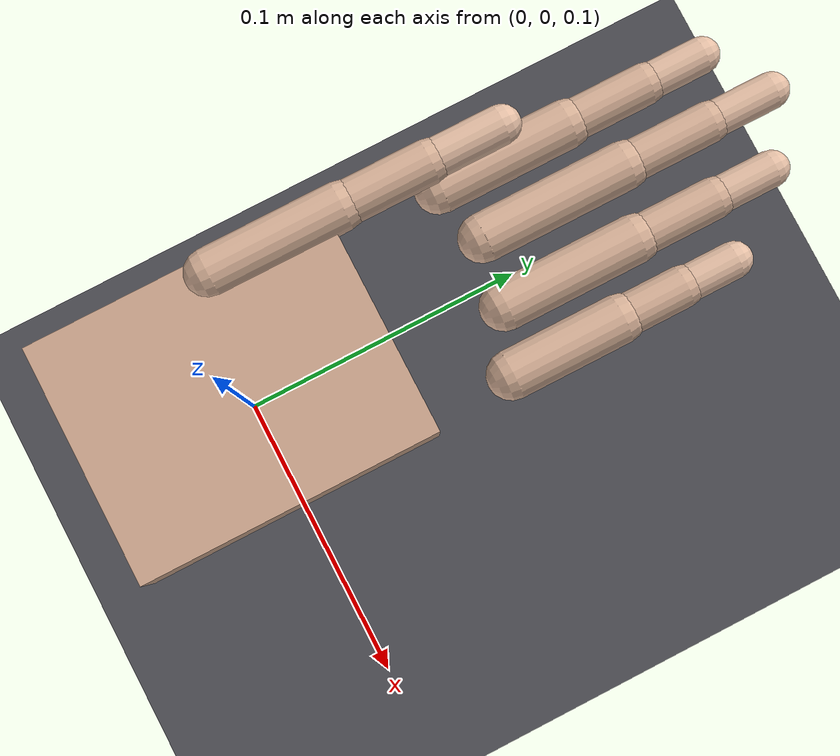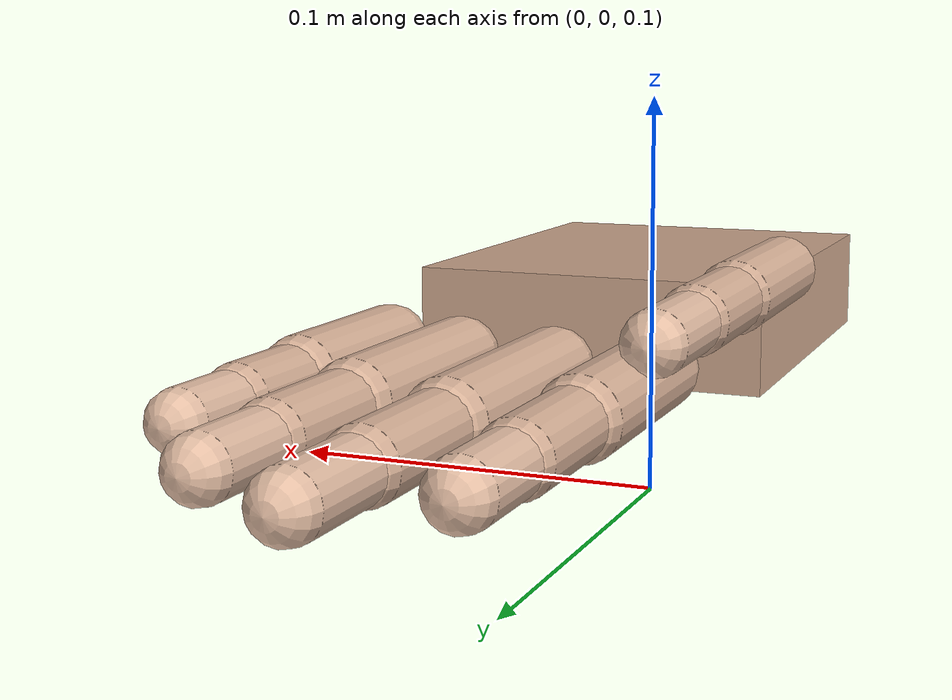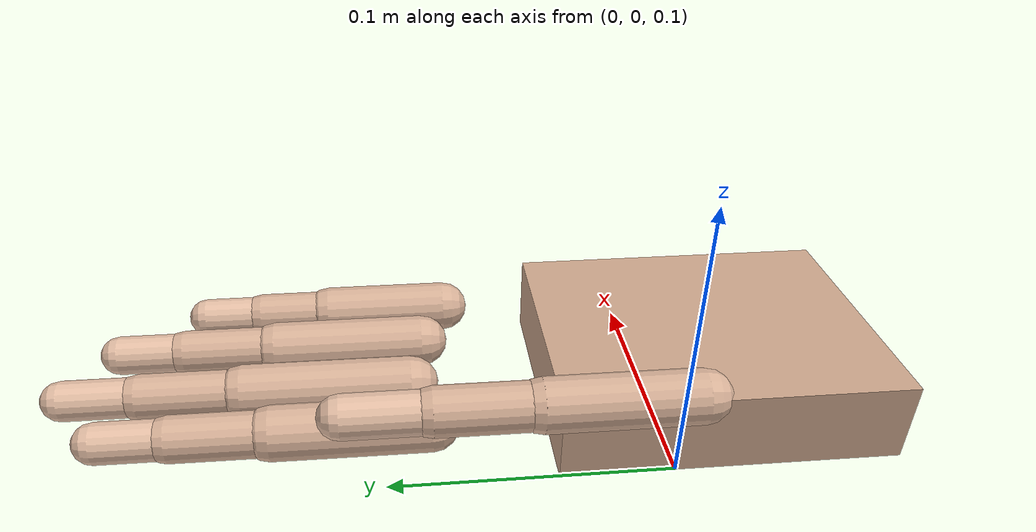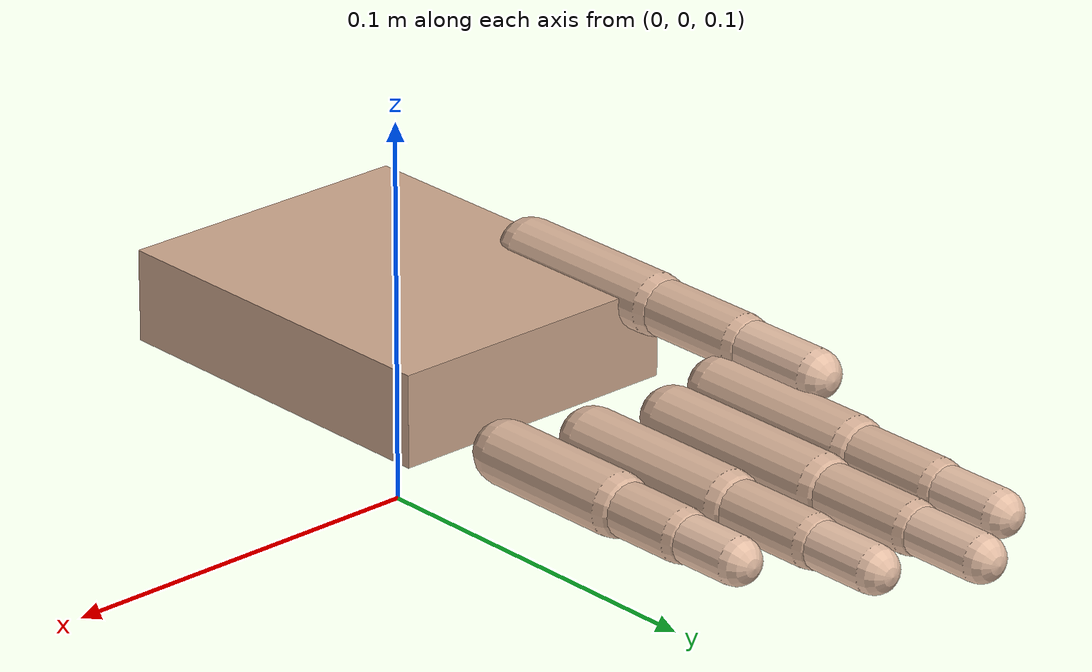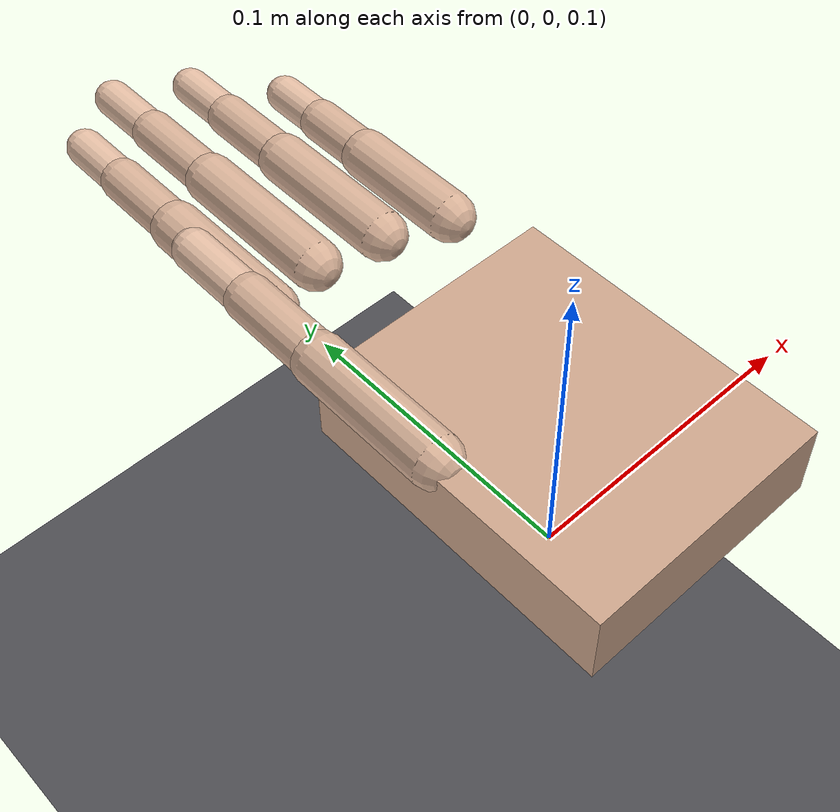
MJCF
<mujoco model="MuJoCo Model">
  <compiler angle="radian"/>

  <option timestep="0.001" integrator="implicitfast"/>

  <worldbody>
    <geom size="1 1 0.1" pos="0 0 -0.15" type="plane" rgba="0.3 0.3 0.32 1"/>
    <light pos="0 0 1.5" type="directional"/>
    <body name="palm" pos="0 0 0.15">
      <geom size="0.04 0.05 0.012" type="box" rgba="0.8 0.65 0.55 1"/>
      <body name="thumb_cmc" pos="-0.035 0.01 0.01">
        <joint name="thumb_CMC_opp" range="-0.587 0.68" axis="0 1 0"/>
        <geom size="0.0048" rgba="0.85 0.7 0.6 1"/>
        <body name="thumb_cmc_abd">
          <joint name="thumb_CMC_abd" range="-1.815 0"/>
          <geom size="0.008 0.0225" pos="0 0.0225 0" quat="0.707107 0.707107 0 0" type="capsule" rgba="0.85 0.7 0.6 1"/>
          <body name="thumb_mcp" pos="0 0.045 0">
            <joint name="thumb_MCP_flex" range="0 1.765" axis="1 0 0"/>
            <geom size="0.0072 0.015" pos="0 0.015 0" quat="0.707107 0.707107 0 0" type="capsule" rgba="0.85 0.7 0.6 1"/>
            <body name="thumb_ip" pos="0 0.03 0">
              <joint name="thumb_IP_flex" range="0 1.641" axis="1 0 0"/>
              <geom size="0.0064 0.0125" pos="0 0.0125 0" quat="0.707107 0.707107 0 0" type="capsule" rgba="0.9 0.75 0.65 1"/>
              <site name="thumb_tip" size="0.004" pos="0 0.025 0"/>
            </body>
          </body>
        </body>
      </body>
      <body name="index_mcp_abd" pos="-0.028 0.085 0">
        <joint name="index_MCP_abd" range="-0.384 0.384"/>
        <geom size="0.0048" rgba="0.85 0.7 0.6 1"/>
        <body name="index_mcp">
          <joint name="index_MCP_flex" range="0 1.571" axis="1 0 0"/>
          <geom size="0.008 0.0225" pos="0 0.0225 0" quat="0.707107 0.707107 0 0" type="capsule" rgba="0.85 0.7 0.6 1"/>
          <body name="index_pip" pos="0 0.045 0">
            <joint name="index_PIP_flex" range="0 1.684" axis="1 0 0"/>
            <geom size="0.0068 0.014" pos="0 0.014 0" quat="0.707107 0.707107 0 0" type="capsule" rgba="0.85 0.7 0.6 1"/>
            <body name="index_dip" pos="0 0.028 0">
              <joint name="index_DIP_flex" range="0 1.396" axis="1 0 0"/>
              <geom size="0.006 0.01" pos="0 0.01 0" quat="0.707107 0.707107 0 0" type="capsule" rgba="0.9 0.75 0.65 1"/>
              <site name="index_tip" size="0.004" pos="0 0.02 0"/>
            </body>
          </body>
        </body>
      </body>
      <body name="middle_mcp_abd" pos="-0.008 0.09 0">
        <joint name="middle_MCP_abd" range="-0.384 0.384"/>
        <geom size="0.0048" rgba="0.85 0.7 0.6 1"/>
        <body name="middle_mcp">
          <joint name="middle_MCP_flex" range="0 1.571" axis="1 0 0"/>
          <geom size="0.008 0.025" pos="0 0.025 0" quat="0.707107 0.707107 0 0" type="capsule" rgba="0.85 0.7 0.6 1"/>
          <body name="middle_pip" pos="0 0.05 0">
            <joint name="middle_PIP_flex" range="0 1.684" axis="1 0 0"/>
            <geom size="0.0068 0.015" pos="0 0.015 0" quat="0.707107 0.707107 0 0" type="capsule" rgba="0.85 0.7 0.6 1"/>
            <body name="middle_dip" pos="0 0.03 0">
              <joint name="middle_DIP_flex" range="0 1.396" axis="1 0 0"/>
              <geom size="0.006 0.011" pos="0 0.011 0" quat="0.707107 0.707107 0 0" type="capsule" rgba="0.9 0.75 0.65 1"/>
              <site name="middle_tip" size="0.004" pos="0 0.022 0"/>
            </body>
          </body>
        </body>
      </body>
      <body name="ring_mcp_abd" pos="0.014 0.086 0">
        <joint name="ring_MCP_abd" range="-0.384 0.384"/>
        <geom size="0.0048" rgba="0.85 0.7 0.6 1"/>
        <body name="ring_mcp">
          <joint name="ring_MCP_flex" range="0 1.571" axis="1 0 0"/>
          <geom size="0.008 0.023" pos="0 0.023 0" quat="0.707107 0.707107 0 0" type="capsule" rgba="0.85 0.7 0.6 1"/>
          <body name="ring_pip" pos="0 0.046 0">
            <joint name="ring_PIP_flex" range="0 1.684" axis="1 0 0"/>
            <geom size="0.0068 0.014" pos="0 0.014 0" quat="0.707107 0.707107 0 0" type="capsule" rgba="0.85 0.7 0.6 1"/>
            <body name="ring_dip" pos="0 0.028 0">
              <joint name="ring_DIP_flex" range="0 1.396" axis="1 0 0"/>
              <geom size="0.006 0.01" pos="0 0.01 0" quat="0.707107 0.707107 0 0" type="capsule" rgba="0.9 0.75 0.65 1"/>
              <site name="ring_tip" size="0.004" pos="0 0.02 0"/>
            </body>
          </body>
        </body>
      </body>
      <body name="pinky_mcp_abd" pos="0.034 0.078 0">
        <joint name="pinky_MCP_abd" range="-0.384 0.384"/>
        <geom size="0.0048" rgba="0.85 0.7 0.6 1"/>
        <body name="pinky_mcp">
          <joint name="pinky_MCP_flex" range="0 1.571" axis="1 0 0"/>
          <geom size="0.008 0.019" pos="0 0.019 0" quat="0.707107 0.707107 0 0" type="capsule" rgba="0.85 0.7 0.6 1"/>
          <body name="pinky_pip" pos="0 0.038 0">
            <joint name="pinky_PIP_flex" range="0 1.684" axis="1 0 0"/>
            <geom size="0.0068 0.011" pos="0 0.011 0" quat="0.707107 0.707107 0 0" type="capsule" rgba="0.85 0.7 0.6 1"/>
            <body name="pinky_dip" pos="0 0.022 0">
              <joint name="pinky_DIP_flex" range="0 1.396" axis="1 0 0"/>
              <geom size="0.006 0.009" pos="0 0.009 0" quat="0.707107 0.707107 0 0" type="capsule" rgba="0.9 0.75 0.65 1"/>
              <site name="pinky_tip" size="0.004" pos="0 0.018 0"/>
            </body>
          </body>
        </body>
      </body>
    </body>
  </worldbody>

  <contact>
    <exclude name="excl_palm_thumb_cmc" body1="palm" body2="thumb_cmc"/>
    <exclude name="excl_palm_thumb_cmc_abd" body1="palm" body2="thumb_cmc_abd"/>
    <exclude name="excl_palm_thumb_mcp" body1="palm" body2="thumb_mcp"/>
    <exclude name="excl_palm_thumb_ip" body1="palm" body2="thumb_ip"/>
    <exclude name="excl_palm_index_mcp_abd" body1="palm" body2="index_mcp_abd"/>
    <exclude name="excl_palm_index_mcp" body1="palm" body2="index_mcp"/>
    <exclude name="excl_palm_index_pip" body1="palm" body2="index_pip"/>
    <exclude name="excl_palm_index_dip" body1="palm" body2="index_dip"/>
    <exclude name="excl_palm_middle_mcp_abd" body1="palm" body2="middle_mcp_abd"/>
    <exclude name="excl_palm_middle_mcp" body1="palm" body2="middle_mcp"/>
    <exclude name="excl_palm_middle_pip" body1="palm" body2="middle_pip"/>
    <exclude name="excl_palm_middle_dip" body1="palm" body2="middle_dip"/>
    <exclude name="excl_palm_ring_mcp_abd" body1="palm" body2="ring_mcp_abd"/>
    <exclude name="excl_palm_ring_mcp" body1="palm" body2="ring_mcp"/>
    <exclude name="excl_palm_ring_pip" body1="palm" body2="ring_pip"/>
    <exclude name="excl_palm_ring_dip" body1="palm" body2="ring_dip"/>
    <exclude name="excl_palm_pinky_mcp_abd" body1="palm" body2="pinky_mcp_abd"/>
    <exclude name="excl_palm_pinky_mcp" body1="palm" body2="pinky_mcp"/>
    <exclude name="excl_palm_pinky_pip" body1="palm" body2="pinky_pip"/>
    <exclude name="excl_palm_pinky_dip" body1="palm" body2="pinky_dip"/>
    <exclude name="excl_thumb_cmc_thumb_cmc_abd" body1="thumb_cmc" body2="thumb_cmc_abd"/>
    <exclude name="excl_thumb_cmc_thumb_mcp" body1="thumb_cmc" body2="thumb_mcp"/>
    <exclude name="excl_thumb_cmc_thumb_ip" body1="thumb_cmc" body2="thumb_ip"/>
    <exclude name="excl_thumb_cmc_index_mcp_abd" body1="thumb_cmc" body2="index_mcp_abd"/>
    <exclude name="excl_thumb_cmc_index_mcp" body1="thumb_cmc" body2="index_mcp"/>
    <exclude name="excl_thumb_cmc_index_pip" body1="thumb_cmc" body2="index_pip"/>
    <exclude name="excl_thumb_cmc_index_dip" body1="thumb_cmc" body2="index_dip"/>
    <exclude name="excl_thumb_cmc_middle_mcp_abd" body1="thumb_cmc" body2="middle_mcp_abd"/>
    <exclude name="excl_thumb_cmc_middle_mcp" body1="thumb_cmc" body2="middle_mcp"/>
    <exclude name="excl_thumb_cmc_middle_pip" body1="thumb_cmc" body2="middle_pip"/>
    <exclude name="excl_thumb_cmc_middle_dip" body1="thumb_cmc" body2="middle_dip"/>
    <exclude name="excl_thumb_cmc_ring_mcp_abd" body1="thumb_cmc" body2="ring_mcp_abd"/>
    <exclude name="excl_thumb_cmc_ring_mcp" body1="thumb_cmc" body2="ring_mcp"/>
    <exclude name="excl_thumb_cmc_ring_pip" body1="thumb_cmc" body2="ring_pip"/>
    <exclude name="excl_thumb_cmc_ring_dip" body1="thumb_cmc" body2="ring_dip"/>
    <exclude name="excl_thumb_cmc_pinky_mcp_abd" body1="thumb_cmc" body2="pinky_mcp_abd"/>
    <exclude name="excl_thumb_cmc_pinky_mcp" body1="thumb_cmc" body2="pinky_mcp"/>
    <exclude name="excl_thumb_cmc_pinky_pip" body1="thumb_cmc" body2="pinky_pip"/>
    <exclude name="excl_thumb_cmc_pinky_dip" body1="thumb_cmc" body2="pinky_dip"/>
    <exclude name="excl_thumb_cmc_abd_thumb_mcp" body1="thumb_cmc_abd" body2="thumb_mcp"/>
    <exclude name="excl_thumb_cmc_abd_thumb_ip" body1="thumb_cmc_abd" body2="thumb_ip"/>
    <exclude name="excl_thumb_cmc_abd_index_mcp_abd" body1="thumb_cmc_abd" body2="index_mcp_abd"/>
    <exclude name="excl_thumb_cmc_abd_index_mcp" body1="thumb_cmc_abd" body2="index_mcp"/>
    <exclude name="excl_thumb_cmc_abd_index_pip" body1="thumb_cmc_abd" body2="index_pip"/>
    <exclude name="excl_thumb_cmc_abd_index_dip" body1="thumb_cmc_abd" body2="index_dip"/>
    <exclude name="excl_thumb_cmc_abd_middle_mcp_abd" body1="thumb_cmc_abd" body2="middle_mcp_abd"/>
    <exclude name="excl_thumb_cmc_abd_middle_mcp" body1="thumb_cmc_abd" body2="middle_mcp"/>
    <exclude name="excl_thumb_cmc_abd_middle_pip" body1="thumb_cmc_abd" body2="middle_pip"/>
    <exclude name="excl_thumb_cmc_abd_middle_dip" body1="thumb_cmc_abd" body2="middle_dip"/>
    <exclude name="excl_thumb_cmc_abd_ring_mcp_abd" body1="thumb_cmc_abd" body2="ring_mcp_abd"/>
    <exclude name="excl_thumb_cmc_abd_ring_mcp" body1="thumb_cmc_abd" body2="ring_mcp"/>
    <exclude name="excl_thumb_cmc_abd_ring_pip" body1="thumb_cmc_abd" body2="ring_pip"/>
    <exclude name="excl_thumb_cmc_abd_ring_dip" body1="thumb_cmc_abd" body2="ring_dip"/>
    <exclude name="excl_thumb_cmc_abd_pinky_mcp_abd" body1="thumb_cmc_abd" body2="pinky_mcp_abd"/>
    <exclude name="excl_thumb_cmc_abd_pinky_mcp" body1="thumb_cmc_abd" body2="pinky_mcp"/>
    <exclude name="excl_thumb_cmc_abd_pinky_pip" body1="thumb_cmc_abd" body2="pinky_pip"/>
    <exclude name="excl_thumb_cmc_abd_pinky_dip" body1="thumb_cmc_abd" body2="pinky_dip"/>
    <exclude name="excl_thumb_mcp_thumb_ip" body1="thumb_mcp" body2="thumb_ip"/>
    <exclude name="excl_thumb_mcp_index_mcp_abd" body1="thumb_mcp" body2="index_mcp_abd"/>
    <exclude name="excl_thumb_mcp_index_mcp" body1="thumb_mcp" body2="index_mcp"/>
    <exclude name="excl_thumb_mcp_index_pip" body1="thumb_mcp" body2="index_pip"/>
    <exclude name="excl_thumb_mcp_index_dip" body1="thumb_mcp" body2="index_dip"/>
    <exclude name="excl_thumb_mcp_middle_mcp_abd" body1="thumb_mcp" body2="middle_mcp_abd"/>
    <exclude name="excl_thumb_mcp_middle_mcp" body1="thumb_mcp" body2="middle_mcp"/>
    <exclude name="excl_thumb_mcp_middle_pip" body1="thumb_mcp" body2="middle_pip"/>
    <exclude name="excl_thumb_mcp_middle_dip" body1="thumb_mcp" body2="middle_dip"/>
    <exclude name="excl_thumb_mcp_ring_mcp_abd" body1="thumb_mcp" body2="ring_mcp_abd"/>
    <exclude name="excl_thumb_mcp_ring_mcp" body1="thumb_mcp" body2="ring_mcp"/>
    <exclude name="excl_thumb_mcp_ring_pip" body1="thumb_mcp" body2="ring_pip"/>
    <exclude name="excl_thumb_mcp_ring_dip" body1="thumb_mcp" body2="ring_dip"/>
    <exclude name="excl_thumb_mcp_pinky_mcp_abd" body1="thumb_mcp" body2="pinky_mcp_abd"/>
    <exclude name="excl_thumb_mcp_pinky_mcp" body1="thumb_mcp" body2="pinky_mcp"/>
    <exclude name="excl_thumb_mcp_pinky_pip" body1="thumb_mcp" body2="pinky_pip"/>
    <exclude name="excl_thumb_mcp_pinky_dip" body1="thumb_mcp" body2="pinky_dip"/>
    <exclude name="excl_thumb_ip_index_mcp_abd" body1="thumb_ip" body2="index_mcp_abd"/>
    <exclude name="excl_thumb_ip_index_mcp" body1="thumb_ip" body2="index_mcp"/>
    <exclude name="excl_thumb_ip_index_pip" body1="thumb_ip" body2="index_pip"/>
    <exclude name="excl_thumb_ip_index_dip" body1="thumb_ip" body2="index_dip"/>
    <exclude name="excl_thumb_ip_middle_mcp_abd" body1="thumb_ip" body2="middle_mcp_abd"/>
    <exclude name="excl_thumb_ip_middle_mcp" body1="thumb_ip" body2="middle_mcp"/>
    <exclude name="excl_thumb_ip_middle_pip" body1="thumb_ip" body2="middle_pip"/>
    <exclude name="excl_thumb_ip_middle_dip" body1="thumb_ip" body2="middle_dip"/>
    <exclude name="excl_thumb_ip_ring_mcp_abd" body1="thumb_ip" body2="ring_mcp_abd"/>
    <exclude name="excl_thumb_ip_ring_mcp" body1="thumb_ip" body2="ring_mcp"/>
    <exclude name="excl_thumb_ip_ring_pip" body1="thumb_ip" body2="ring_pip"/>
    <exclude name="excl_thumb_ip_ring_dip" body1="thumb_ip" body2="ring_dip"/>
    <exclude name="excl_thumb_ip_pinky_mcp_abd" body1="thumb_ip" body2="pinky_mcp_abd"/>
    <exclude name="excl_thumb_ip_pinky_mcp" body1="thumb_ip" body2="pinky_mcp"/>
    <exclude name="excl_thumb_ip_pinky_pip" body1="thumb_ip" body2="pinky_pip"/>
    <exclude name="excl_thumb_ip_pinky_dip" body1="thumb_ip" body2="pinky_dip"/>
    <exclude name="excl_index_mcp_abd_index_mcp" body1="index_mcp_abd" body2="index_mcp"/>
    <exclude name="excl_index_mcp_abd_index_pip" body1="index_mcp_abd" body2="index_pip"/>
    <exclude name="excl_index_mcp_abd_index_dip" body1="index_mcp_abd" body2="index_dip"/>
    <exclude name="excl_index_mcp_abd_middle_mcp_abd" body1="index_mcp_abd" body2="middle_mcp_abd"/>
    <exclude name="excl_index_mcp_abd_middle_mcp" body1="index_mcp_abd" body2="middle_mcp"/>
    <exclude name="excl_index_mcp_abd_middle_pip" body1="index_mcp_abd" body2="middle_pip"/>
    <exclude name="excl_index_mcp_abd_middle_dip" body1="index_mcp_abd" body2="middle_dip"/>
    <exclude name="excl_index_mcp_abd_ring_mcp_abd" body1="index_mcp_abd" body2="ring_mcp_abd"/>
    <exclude name="excl_index_mcp_abd_ring_mcp" body1="index_mcp_abd" body2="ring_mcp"/>
    <exclude name="excl_index_mcp_abd_ring_pip" body1="index_mcp_abd" body2="ring_pip"/>
    <exclude name="excl_index_mcp_abd_ring_dip" body1="index_mcp_abd" body2="ring_dip"/>
    <exclude name="excl_index_mcp_abd_pinky_mcp_abd" body1="index_mcp_abd" body2="pinky_mcp_abd"/>
    <exclude name="excl_index_mcp_abd_pinky_mcp" body1="index_mcp_abd" body2="pinky_mcp"/>
    <exclude name="excl_index_mcp_abd_pinky_pip" body1="index_mcp_abd" body2="pinky_pip"/>
    <exclude name="excl_index_mcp_abd_pinky_dip" body1="index_mcp_abd" body2="pinky_dip"/>
    <exclude name="excl_index_mcp_index_pip" body1="index_mcp" body2="index_pip"/>
    <exclude name="excl_index_mcp_index_dip" body1="index_mcp" body2="index_dip"/>
    <exclude name="excl_index_mcp_middle_mcp_abd" body1="index_mcp" body2="middle_mcp_abd"/>
    <exclude name="excl_index_mcp_middle_mcp" body1="index_mcp" body2="middle_mcp"/>
    <exclude name="excl_index_mcp_middle_pip" body1="index_mcp" body2="middle_pip"/>
    <exclude name="excl_index_mcp_middle_dip" body1="index_mcp" body2="middle_dip"/>
    <exclude name="excl_index_mcp_ring_mcp_abd" body1="index_mcp" body2="ring_mcp_abd"/>
    <exclude name="excl_index_mcp_ring_mcp" body1="index_mcp" body2="ring_mcp"/>
    <exclude name="excl_index_mcp_ring_pip" body1="index_mcp" body2="ring_pip"/>
    <exclude name="excl_index_mcp_ring_dip" body1="index_mcp" body2="ring_dip"/>
    <exclude name="excl_index_mcp_pinky_mcp_abd" body1="index_mcp" body2="pinky_mcp_abd"/>
    <exclude name="excl_index_mcp_pinky_mcp" body1="index_mcp" body2="pinky_mcp"/>
    <exclude name="excl_index_mcp_pinky_pip" body1="index_mcp" body2="pinky_pip"/>
    <exclude name="excl_index_mcp_pinky_dip" body1="index_mcp" body2="pinky_dip"/>
    <exclude name="excl_index_pip_index_dip" body1="index_pip" body2="index_dip"/>
    <exclude name="excl_index_pip_middle_mcp_abd" body1="index_pip" body2="middle_mcp_abd"/>
    <exclude name="excl_index_pip_middle_mcp" body1="index_pip" body2="middle_mcp"/>
    <exclude name="excl_index_pip_middle_pip" body1="index_pip" body2="middle_pip"/>
    <exclude name="excl_index_pip_middle_dip" body1="index_pip" body2="middle_dip"/>
    <exclude name="excl_index_pip_ring_mcp_abd" body1="index_pip" body2="ring_mcp_abd"/>
    <exclude name="excl_index_pip_ring_mcp" body1="index_pip" body2="ring_mcp"/>
    <exclude name="excl_index_pip_ring_pip" body1="index_pip" body2="ring_pip"/>
    <exclude name="excl_index_pip_ring_dip" body1="index_pip" body2="ring_dip"/>
    <exclude name="excl_index_pip_pinky_mcp_abd" body1="index_pip" body2="pinky_mcp_abd"/>
    <exclude name="excl_index_pip_pinky_mcp" body1="index_pip" body2="pinky_mcp"/>
    <exclude name="excl_index_pip_pinky_pip" body1="index_pip" body2="pinky_pip"/>
    <exclude name="excl_index_pip_pinky_dip" body1="index_pip" body2="pinky_dip"/>
    <exclude name="excl_index_dip_middle_mcp_abd" body1="index_dip" body2="middle_mcp_abd"/>
    <exclude name="excl_index_dip_middle_mcp" body1="index_dip" body2="middle_mcp"/>
    <exclude name="excl_index_dip_middle_pip" body1="index_dip" body2="middle_pip"/>
    <exclude name="excl_index_dip_middle_dip" body1="index_dip" body2="middle_dip"/>
    <exclude name="excl_index_dip_ring_mcp_abd" body1="index_dip" body2="ring_mcp_abd"/>
    <exclude name="excl_index_dip_ring_mcp" body1="index_dip" body2="ring_mcp"/>
    <exclude name="excl_index_dip_ring_pip" body1="index_dip" body2="ring_pip"/>
    <exclude name="excl_index_dip_ring_dip" body1="index_dip" body2="ring_dip"/>
    <exclude name="excl_index_dip_pinky_mcp_abd" body1="index_dip" body2="pinky_mcp_abd"/>
    <exclude name="excl_index_dip_pinky_mcp" body1="index_dip" body2="pinky_mcp"/>
    <exclude name="excl_index_dip_pinky_pip" body1="index_dip" body2="pinky_pip"/>
    <exclude name="excl_index_dip_pinky_dip" body1="index_dip" body2="pinky_dip"/>
    <exclude name="excl_middle_mcp_abd_middle_mcp" body1="middle_mcp_abd" body2="middle_mcp"/>
    <exclude name="excl_middle_mcp_abd_middle_pip" body1="middle_mcp_abd" body2="middle_pip"/>
    <exclude name="excl_middle_mcp_abd_middle_dip" body1="middle_mcp_abd" body2="middle_dip"/>
    <exclude name="excl_middle_mcp_abd_ring_mcp_abd" body1="middle_mcp_abd" body2="ring_mcp_abd"/>
    <exclude name="excl_middle_mcp_abd_ring_mcp" body1="middle_mcp_abd" body2="ring_mcp"/>
    <exclude name="excl_middle_mcp_abd_ring_pip" body1="middle_mcp_abd" body2="ring_pip"/>
    <exclude name="excl_middle_mcp_abd_ring_dip" body1="middle_mcp_abd" body2="ring_dip"/>
    <exclude name="excl_middle_mcp_abd_pinky_mcp_abd" body1="middle_mcp_abd" body2="pinky_mcp_abd"/>
    <exclude name="excl_middle_mcp_abd_pinky_mcp" body1="middle_mcp_abd" body2="pinky_mcp"/>
    <exclude name="excl_middle_mcp_abd_pinky_pip" body1="middle_mcp_abd" body2="pinky_pip"/>
    <exclude name="excl_middle_mcp_abd_pinky_dip" body1="middle_mcp_abd" body2="pinky_dip"/>
    <exclude name="excl_middle_mcp_middle_pip" body1="middle_mcp" body2="middle_pip"/>
    <exclude name="excl_middle_mcp_middle_dip" body1="middle_mcp" body2="middle_dip"/>
    <exclude name="excl_middle_mcp_ring_mcp_abd" body1="middle_mcp" body2="ring_mcp_abd"/>
    <exclude name="excl_middle_mcp_ring_mcp" body1="middle_mcp" body2="ring_mcp"/>
    <exclude name="excl_middle_mcp_ring_pip" body1="middle_mcp" body2="ring_pip"/>
    <exclude name="excl_middle_mcp_ring_dip" body1="middle_mcp" body2="ring_dip"/>
    <exclude name="excl_middle_mcp_pinky_mcp_abd" body1="middle_mcp" body2="pinky_mcp_abd"/>
    <exclude name="excl_middle_mcp_pinky_mcp" body1="middle_mcp" body2="pinky_mcp"/>
    <exclude name="excl_middle_mcp_pinky_pip" body1="middle_mcp" body2="pinky_pip"/>
    <exclude name="excl_middle_mcp_pinky_dip" body1="middle_mcp" body2="pinky_dip"/>
    <exclude name="excl_middle_pip_middle_dip" body1="middle_pip" body2="middle_dip"/>
    <exclude name="excl_middle_pip_ring_mcp_abd" body1="middle_pip" body2="ring_mcp_abd"/>
    <exclude name="excl_middle_pip_ring_mcp" body1="middle_pip" body2="ring_mcp"/>
    <exclude name="excl_middle_pip_ring_pip" body1="middle_pip" body2="ring_pip"/>
    <exclude name="excl_middle_pip_ring_dip" body1="middle_pip" body2="ring_dip"/>
    <exclude name="excl_middle_pip_pinky_mcp_abd" body1="middle_pip" body2="pinky_mcp_abd"/>
    <exclude name="excl_middle_pip_pinky_mcp" body1="middle_pip" body2="pinky_mcp"/>
    <exclude name="excl_middle_pip_pinky_pip" body1="middle_pip" body2="pinky_pip"/>
    <exclude name="excl_middle_pip_pinky_dip" body1="middle_pip" body2="pinky_dip"/>
    <exclude name="excl_middle_dip_ring_mcp_abd" body1="middle_dip" body2="ring_mcp_abd"/>
    <exclude name="excl_middle_dip_ring_mcp" body1="middle_dip" body2="ring_mcp"/>
    <exclude name="excl_middle_dip_ring_pip" body1="middle_dip" body2="ring_pip"/>
    <exclude name="excl_middle_dip_ring_dip" body1="middle_dip" body2="ring_dip"/>
    <exclude name="excl_middle_dip_pinky_mcp_abd" body1="middle_dip" body2="pinky_mcp_abd"/>
    <exclude name="excl_middle_dip_pinky_mcp" body1="middle_dip" body2="pinky_mcp"/>
    <exclude name="excl_middle_dip_pinky_pip" body1="middle_dip" body2="pinky_pip"/>
    <exclude name="excl_middle_dip_pinky_dip" body1="middle_dip" body2="pinky_dip"/>
    <exclude name="excl_ring_mcp_abd_ring_mcp" body1="ring_mcp_abd" body2="ring_mcp"/>
    <exclude name="excl_ring_mcp_abd_ring_pip" body1="ring_mcp_abd" body2="ring_pip"/>
    <exclude name="excl_ring_mcp_abd_ring_dip" body1="ring_mcp_abd" body2="ring_dip"/>
    <exclude name="excl_ring_mcp_abd_pinky_mcp_abd" body1="ring_mcp_abd" body2="pinky_mcp_abd"/>
    <exclude name="excl_ring_mcp_abd_pinky_mcp" body1="ring_mcp_abd" body2="pinky_mcp"/>
    <exclude name="excl_ring_mcp_abd_pinky_pip" body1="ring_mcp_abd" body2="pinky_pip"/>
    <exclude name="excl_ring_mcp_abd_pinky_dip" body1="ring_mcp_abd" body2="pinky_dip"/>
    <exclude name="excl_ring_mcp_ring_pip" body1="ring_mcp" body2="ring_pip"/>
    <exclude name="excl_ring_mcp_ring_dip" body1="ring_mcp" body2="ring_dip"/>
    <exclude name="excl_ring_mcp_pinky_mcp_abd" body1="ring_mcp" body2="pinky_mcp_abd"/>
    <exclude name="excl_ring_mcp_pinky_mcp" body1="ring_mcp" body2="pinky_mcp"/>
    <exclude name="excl_ring_mcp_pinky_pip" body1="ring_mcp" body2="pinky_pip"/>
    <exclude name="excl_ring_mcp_pinky_dip" body1="ring_mcp" body2="pinky_dip"/>
    <exclude name="excl_ring_pip_ring_dip" body1="ring_pip" body2="ring_dip"/>
    <exclude name="excl_ring_pip_pinky_mcp_abd" body1="ring_pip" body2="pinky_mcp_abd"/>
    <exclude name="excl_ring_pip_pinky_mcp" body1="ring_pip" body2="pinky_mcp"/>
    <exclude name="excl_ring_pip_pinky_pip" body1="ring_pip" body2="pinky_pip"/>
    <exclude name="excl_ring_pip_pinky_dip" body1="ring_pip" body2="pinky_dip"/>
    <exclude name="excl_ring_dip_pinky_mcp_abd" body1="ring_dip" body2="pinky_mcp_abd"/>
    <exclude name="excl_ring_dip_pinky_mcp" body1="ring_dip" body2="pinky_mcp"/>
    <exclude name="excl_ring_dip_pinky_pip" body1="ring_dip" body2="pinky_pip"/>
    <exclude name="excl_ring_dip_pinky_dip" body1="ring_dip" body2="pinky_dip"/>
    <exclude name="excl_pinky_mcp_abd_pinky_mcp" body1="pinky_mcp_abd" body2="pinky_mcp"/>
    <exclude name="excl_pinky_mcp_abd_pinky_pip" body1="pinky_mcp_abd" body2="pinky_pip"/>
    <exclude name="excl_pinky_mcp_abd_pinky_dip" body1="pinky_mcp_abd" body2="pinky_dip"/>
    <exclude name="excl_pinky_mcp_pinky_pip" body1="pinky_mcp" body2="pinky_pip"/>
    <exclude name="excl_pinky_mcp_pinky_dip" body1="pinky_mcp" body2="pinky_dip"/>
    <exclude name="excl_pinky_pip_pinky_dip" body1="pinky_pip" body2="pinky_dip"/>
  </contact>

  <actuator>
    <general name="thumb_CMC_opp_ctrl" joint="thumb_CMC_opp" ctrlrange="-0.587 0.68" biastype="affine" gainprm="0.05" biasprm="0 -0.05 -0.01"/>
    <general name="thumb_CMC_abd_ctrl" joint="thumb_CMC_abd" ctrlrange="-1.815 0" biastype="affine" gainprm="0.05" biasprm="0 -0.05 -0.01"/>
    <general name="thumb_MCP_flex_ctrl" joint="thumb_MCP_flex" ctrlrange="0 1.765" biastype="affine" gainprm="0.05" biasprm="0 -0.05 -0.01"/>
    <general name="thumb_IP_flex_ctrl" joint="thumb_IP_flex" ctrlrange="0 1.641" biastype="affine" gainprm="0.05" biasprm="0 -0.05 -0.01"/>
    <general name="index_MCP_abd_ctrl" joint="index_MCP_abd" ctrlrange="-0.384 0.384" biastype="affine" gainprm="0.05" biasprm="0 -0.05 -0.01"/>
    <general name="index_MCP_flex_ctrl" joint="index_MCP_flex" ctrlrange="0 1.571" biastype="affine" gainprm="0.05" biasprm="0 -0.05 -0.01"/>
    <general name="index_PIP_flex_ctrl" joint="index_PIP_flex" ctrlrange="0 1.684" biastype="affine" gainprm="0.05" biasprm="0 -0.05 -0.01"/>
    <general name="index_DIP_flex_ctrl" joint="index_DIP_flex" ctrlrange="0 1.396" biastype="affine" gainprm="0.05" biasprm="0 -0.05 -0.01"/>
    <general name="middle_MCP_abd_ctrl" joint="middle_MCP_abd" ctrlrange="-0.384 0.384" biastype="affine" gainprm="0.05" biasprm="0 -0.05 -0.01"/>
    <general name="middle_MCP_flex_ctrl" joint="middle_MCP_flex" ctrlrange="0 1.571" biastype="affine" gainprm="0.05" biasprm="0 -0.05 -0.01"/>
    <general name="middle_PIP_flex_ctrl" joint="middle_PIP_flex" ctrlrange="0 1.684" biastype="affine" gainprm="0.05" biasprm="0 -0.05 -0.01"/>
    <general name="middle_DIP_flex_ctrl" joint="middle_DIP_flex" ctrlrange="0 1.396" biastype="affine" gainprm="0.05" biasprm="0 -0.05 -0.01"/>
    <general name="ring_MCP_abd_ctrl" joint="ring_MCP_abd" ctrlrange="-0.384 0.384" biastype="affine" gainprm="0.05" biasprm="0 -0.05 -0.01"/>
    <general name="ring_MCP_flex_ctrl" joint="ring_MCP_flex" ctrlrange="0 1.571" biastype="affine" gainprm="0.05" biasprm="0 -0.05 -0.01"/>
    <general name="ring_PIP_flex_ctrl" joint="ring_PIP_flex" ctrlrange="0 1.684" biastype="affine" gainprm="0.05" biasprm="0 -0.05 -0.01"/>
    <general name="ring_DIP_flex_ctrl" joint="ring_DIP_flex" ctrlrange="0 1.396" biastype="affine" gainprm="0.05" biasprm="0 -0.05 -0.01"/>
    <general name="pinky_MCP_abd_ctrl" joint="pinky_MCP_abd" ctrlrange="-0.384 0.384" biastype="affine" gainprm="0.05" biasprm="0 -0.05 -0.01"/>
    <general name="pinky_MCP_flex_ctrl" joint="pinky_MCP_flex" ctrlrange="0 1.571" biastype="affine" gainprm="0.05" biasprm="0 -0.05 -0.01"/>
    <general name="pinky_PIP_flex_ctrl" joint="pinky_PIP_flex" ctrlrange="0 1.684" biastype="affine" gainprm="0.05" biasprm="0 -0.05 -0.01"/>
    <general name="pinky_DIP_flex_ctrl" joint="pinky_DIP_flex" ctrlrange="0 1.396" biastype="affine" gainprm="0.05" biasprm="0 -0.05 -0.01"/>
  </actuator>
</mujoco>
